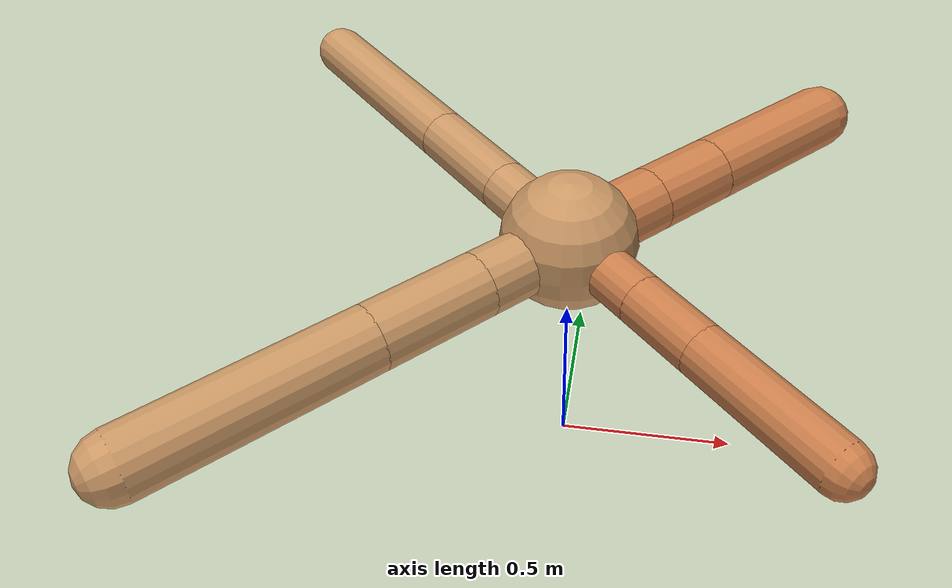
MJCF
<?xml version="1.0" ?>
<mujoco model="ant">

	<compiler angle="degree" coordinate="local" inertiafromgeom="true"/>

	<option integrator="RK4" timestep="0.01"/>

	<custom>

		<numeric data="0.0 0.0 0.55 1.0 0.0 0.0 0.0 0.0 1.0 0.0 -1.0 0.0 -1.0 0.0 1.0" name="init_qpos"/>

	</custom>

	<default>

		<joint armature="1" damping="1" limited="true"/>

		<geom conaffinity="0" condim="3" density="5.0" friction="1.5 0.1 0.1" margin="0.01" rgba="0.8 0.6 0.4 1"/>

	</default>

	<worldbody>

		<body name="torso" pos="0 0 0.75">

			<geom name="torso_geom" pos="0 0 0" size="0.18344136681362339" type="sphere"/>

			<!--joint armature="0" damping="0" limited="false" margin="0.01" name="root" pos="0 0 0" type="free"/-->

			<body name="front_left_leg" pos="0 0 0">

				<geom fromto="0 0 0 0.2 0.2 0" name="aux_1_geom" size="0.09158574703159816" type="capsule" rgba=".8 .5 .3 1"/>

				<body name="aux_1" pos="0.2 0.2 0">

					<joint axis="0 0 1" name="hip_1" pos="0.0 0.0 0.0" range="-40 40" type="hinge"/>

					<geom fromto="0 0 0 0.1592079011906265 0.1592079011906265 0" name="left_leg_geom" size="0.09158574703159816" type="capsule" rgba=".8 .5 .3 1"/>

					<body pos="0.1592079011906265 0.1592079011906265 0" name="front_left_foot">

						<joint axis="-1 1 0" name="ankle_1" pos="0.0 0.0 0.0" range="30 100" type="hinge"/>

						<geom fromto="0 0 0 0.318415802381253 0.318415802381253 0" name="left_ankle_geom" size="0.09158574703159816" type="capsule" rgba=".8 .5 .3 1"/>

					</body>

				</body>

			</body>

			<body name="front_right_leg" pos="0 0 0">

				<geom fromto="0 0 0 -0.2 0.2 0" name="aux_2_geom" size="0.07526858691709597" type="capsule"/>

				<body name="aux_2" pos="-0.2 0.2 0">

					<joint axis="0 0 1" name="hip_2" pos="0.0 0.0 0.0" range="-40 40" type="hinge"/>

					<geom fromto="0 0 0 -0.2181957012872868 0.2181957012872868 0" name="right_leg_geom" size="0.07526858691709597" type="capsule"/>

					<body pos="-0.2181957012872868 0.2181957012872868 0" name="front_right_foot">

						<joint axis="1 1 0" name="ankle_2" pos="0.0 0.0 0.0" range="-100 -30" type="hinge"/>

						<geom fromto="0 0 0 -0.4363914025745736 0.4363914025745736 0" name="right_ankle_geom" size="0.07526858691709597" type="capsule"/>

					</body>

				</body>

			</body>

			<body name="left_back_leg" pos="0 0 0">

				<geom fromto="0 0 0 -0.2 -0.2 0" name="aux_3_geom" size="0.0864838254137145" type="capsule"/>

				<body name="aux_3" pos="-0.2 -0.2 0">

					<joint axis="0 0 1" name="hip_3" pos="0.0 0.0 0.0" range="-40 40" type="hinge"/>

					<geom fromto="0 0 0 -0.21648918243586707 -0.21648918243586707 0" name="back_leg_geom" size="0.0864838254137145" type="capsule"/>

					<body pos="-0.21648918243586707 -0.21648918243586707 0" name="left_back_foot">

						<joint axis="-1 1 0" name="ankle_3" pos="0.0 0.0 0.0" range="-100 -30" type="hinge"/>

						<geom fromto="0 0 0 -0.43297836487173413 -0.43297836487173413 0" name="third_ankle_geom" size="0.0864838254137145" type="capsule"/>

					</body>

				</body>

			</body>

			<body name="right_back_leg" pos="0 0 0">

				<geom fromto="0 0 0 0.2 -0.2 0" name="aux_4_geom" size="0.06957445840255881" type="capsule" rgba=".8 .5 .3 1"/>

				<body name="aux_4" pos="0.2 -0.2 0">

					<joint axis="0 0 1" name="hip_4" pos="0.0 0.0 0.0" range="-40 40" type="hinge"/>

					<geom fromto="0 0 0 0.1473562527957992 -0.1473562527957992 0" name="rightback_leg_geom" size="0.06957445840255881" type="capsule" rgba=".8 .5 .3 1"/>

					<body pos="0.1473562527957992 -0.1473562527957992 0" name="right_back_foot">

						<joint axis="1 1 0" name="ankle_4" pos="0.0 0.0 0.0" range="30 100" type="hinge"/>

						<geom fromto="0 0 0 0.2947125055915984 -0.2947125055915984 0" name="fourth_ankle_geom" size="0.06957445840255881" type="capsule" rgba=".8 .5 .3 1"/>

					</body>

				</body>

			</body>

		</body>

	</worldbody>

	<actuator>

		<motor ctrllimited="true" ctrlrange="-1.0 1.0" joint="hip_4" gear="150"/>

		<motor ctrllimited="true" ctrlrange="-1.0 1.0" joint="ankle_4" gear="150"/>

		<motor ctrllimited="true" ctrlrange="-1.0 1.0" joint="hip_1" gear="150"/>

		<motor ctrllimited="true" ctrlrange="-1.0 1.0" joint="ankle_1" gear="150"/>

		<motor ctrllimited="true" ctrlrange="-1.0 1.0" joint="hip_2" gear="150"/>

		<motor ctrllimited="true" ctrlrange="-1.0 1.0" joint="ankle_2" gear="150"/>

		<motor ctrllimited="true" ctrlrange="-1.0 1.0" joint="hip_3" gear="150"/>

		<motor ctrllimited="true" ctrlrange="-1.0 1.0" joint="ankle_3" gear="150"/>

	</actuator>

</mujoco>
